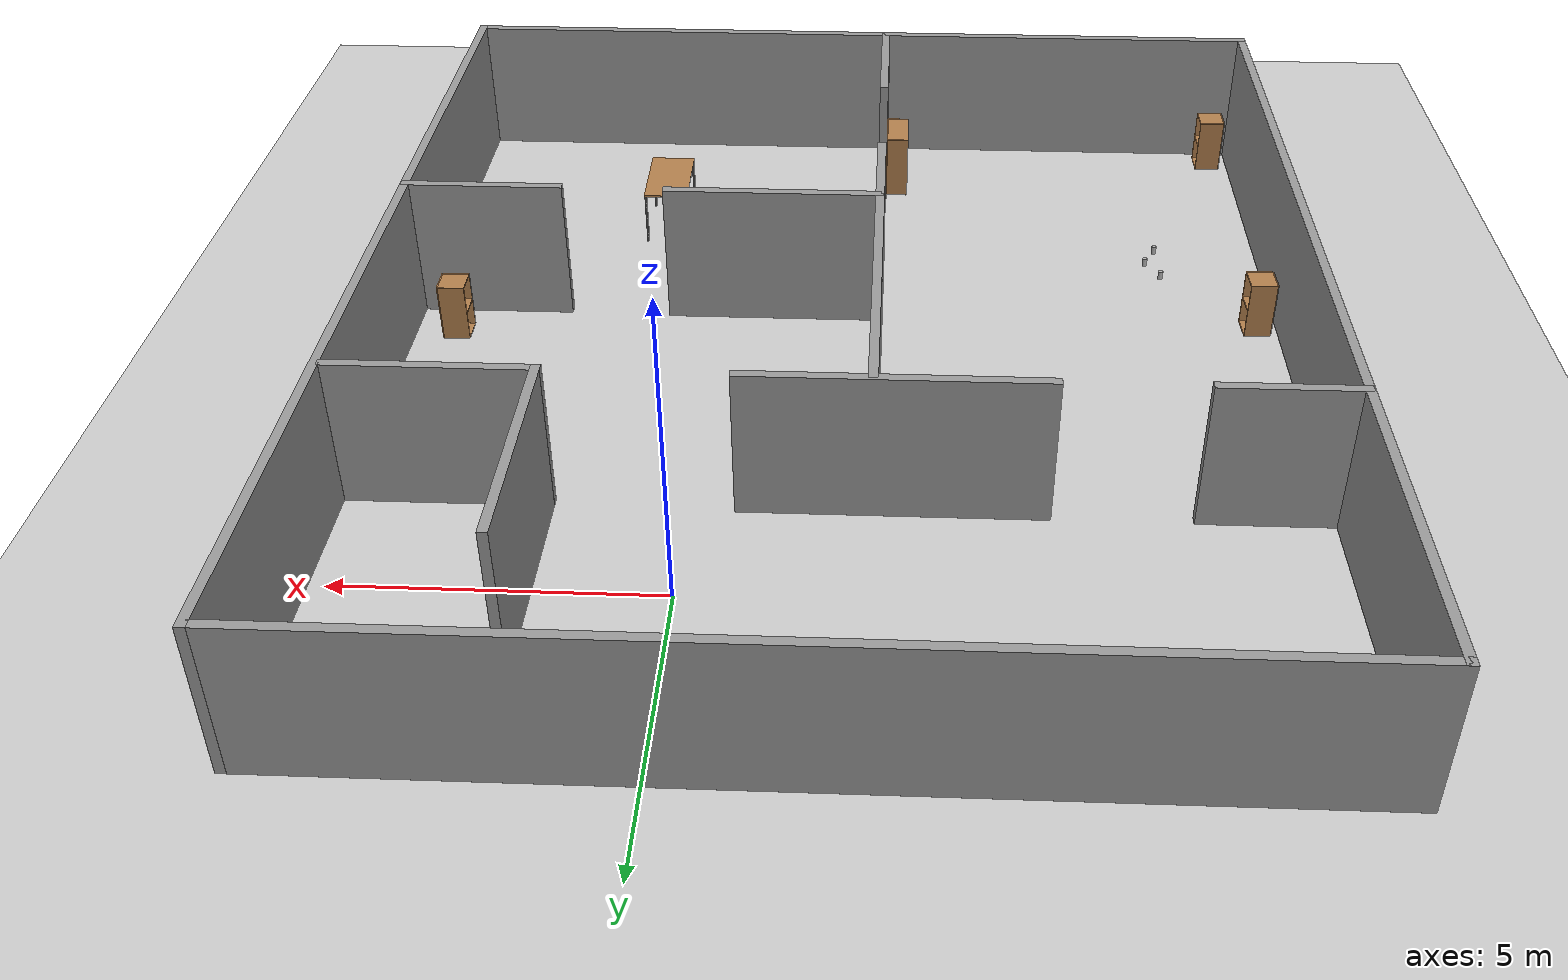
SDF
<sdf version="1.7">
 <world name="default">
  <model name="ground_plane">
   <static>1</static>
   <link name="link">
    <collision name="collision">
     <geometry><plane><normal>0 0 1</normal><size>100 100</size></plane></geometry>
     <surface><friction><ode><mu>100</mu><mu2>50</mu2></ode></friction></surface>
    </collision>
    <visual name="visual">
     <cast_shadows>0</cast_shadows>
     <geometry><plane><normal>0 0 1</normal><size>100 100</size></plane></geometry>
     <material>
      <script><uri>file://media/materials/scripts/gazebo.material</uri><name>Gazebo/Grey</name></script>
     </material>
    </visual>
    <velocity_decay><linear>0</linear><angular>0</angular></velocity_decay>
   </link>
  </model>
  <model name="cabinet_0">
   <static>0</static>
   <link name="cabinet_bottom_plate">
    <inertial>
     <pose>0 0 -1 0 -0 0</pose>
     <inertia><ixx>2.05</ixx><ixy>0</ixy><ixz>0</ixz><iyy>2.05</iyy><iyz>0</iyz><izz>2.05</izz></inertia>
     <mass>25</mass>
    </inertial>
    <collision name="cabinet_bottom_plate_geom">
     <pose>0 0 0.01 0 -0 0</pose>
     <geometry><box><size>0.45 0.45 0.02</size></box></geometry>
    </collision>
    <visual name="cabinet_bottom_plate_geom_visual">
     <pose>0 0 0.01 0 -0 0</pose>
     <geometry><box><size>0.45 0.45 0.02</size></box></geometry>
     <material>
      <script><uri>file://media/materials/scripts/gazebo.material</uri><name>Gazebo/Wood</name></script>
     </material>
    </visual>
    <collision name="cabinet_bottom_plate_geom_cabinet_back_plate">
     <pose>0.235 0 0.51 0 -0 0</pose>
     <geometry><box><size>0.02 0.45 1.02</size></box></geometry>
    </collision>
    <visual name="cabinet_bottom_plate_geom_cabinet_back_plate_visual">
     <pose>0.235 0 0.51 0 -0 0</pose>
     <geometry><box><size>0.02 0.45 1.02</size></box></geometry>
     <material>
      <script><uri>file://media/materials/scripts/gazebo.material</uri><name>Gazebo/Wood</name></script>
     </material>
    </visual>
    <collision name="cabinet_bottom_plate_geom_cabinet_left_plate">
     <pose>0 0.235 0.51 0 -0 0</pose>
     <geometry><box><size>0.45 0.02 1.02</size></box></geometry>
    </collision>
    <visual name="cabinet_bottom_plate_geom_cabinet_left_plate_visual">
     <pose>0 0.235 0.51 0 -0 0</pose>
     <geometry><box><size>0.45 0.02 1.02</size></box></geometry>
     <material>
      <script><uri>file://media/materials/scripts/gazebo.material</uri><name>Gazebo/Wood</name></script>
     </material>
    </visual>
    <collision name="cabinet_bottom_plate_geom_cabinet_middle_plate">
     <pose>0 0 0.51 0 -0 0</pose>
     <geometry><box><size>0.45 0.45 0.02</size></box></geometry>
    </collision>
    <visual name="cabinet_bottom_plate_geom_cabinet_middle_plate_visual">
     <pose>0 0 0.51 0 -0 0</pose>
     <geometry><box><size>0.45 0.45 0.02</size></box></geometry>
     <material>
      <script><uri>file://media/materials/scripts/gazebo.material</uri><name>Gazebo/Wood</name></script>
     </material>
    </visual>
    <collision name="cabinet_bottom_plate_geom_cabinet_right_plate">
     <pose>0 -0.235 0.51 0 -0 0</pose>
     <geometry><box><size>0.45 0.02 1.02</size></box></geometry>
    </collision>
    <visual name="cabinet_bottom_plate_geom_cabinet_right_plate_visual">
     <pose>0 -0.235 0.51 0 -0 0</pose>
     <geometry><box><size>0.45 0.02 1.02</size></box></geometry>
     <material>
      <script><uri>file://media/materials/scripts/gazebo.material</uri><name>Gazebo/Wood</name></script>
     </material>
    </visual>
    <collision name="cabinet_bottom_plate_geom_cabinet_top_plate">
     <pose>0 0 1.01 0 -0 0</pose>
     <geometry><box><size>0.45 0.45 0.02</size></box></geometry>
    </collision>
    <visual name="cabinet_bottom_plate_geom_cabinet_top_plate_visual">
     <pose>0 0 1.01 0 -0 0</pose>
     <geometry><box><size>0.45 0.45 0.02</size></box></geometry>
     <material>
      <script><uri>file://media/materials/scripts/gazebo.material</uri><name>Gazebo/Wood</name></script>
     </material>
    </visual>
    <velocity_decay><linear>0</linear><angular>0</angular></velocity_decay>
   </link>
   <pose>4.50364 -6.65177 -0 1e-06 -0 0.009496</pose>
  </model>
  <model name="cabinet_1">
   <static>0</static>
   <link name="cabinet_bottom_plate">
    <inertial>
     <pose>0 0 -1 0 -0 0</pose>
     <inertia><ixx>2.05</ixx><ixy>0</ixy><ixz>0</ixz><iyy>2.05</iyy><iyz>0</iyz><izz>2.05</izz></inertia>
     <mass>25</mass>
    </inertial>
    <collision name="cabinet_bottom_plate_geom">
     <pose>0 0 0.01 0 -0 0</pose>
     <geometry><box><size>0.45 0.45 0.02</size></box></geometry>
    </collision>
    <visual name="cabinet_bottom_plate_geom_visual">
     <pose>0 0 0.01 0 -0 0</pose>
     <geometry><box><size>0.45 0.45 0.02</size></box></geometry>
     <material>
      <script><uri>file://media/materials/scripts/gazebo.material</uri><name>Gazebo/Wood</name></script>
     </material>
    </visual>
    <collision name="cabinet_bottom_plate_geom_cabinet_back_plate">
     <pose>0.235 0 0.51 0 -0 0</pose>
     <geometry><box><size>0.02 0.45 1.02</size></box></geometry>
    </collision>
    <visual name="cabinet_bottom_plate_geom_cabinet_back_plate_visual">
     <pose>0.235 0 0.51 0 -0 0</pose>
     <geometry><box><size>0.02 0.45 1.02</size></box></geometry>
     <material>
      <script><uri>file://media/materials/scripts/gazebo.material</uri><name>Gazebo/Wood</name></script>
     </material>
    </visual>
    <collision name="cabinet_bottom_plate_geom_cabinet_left_plate">
     <pose>0 0.235 0.51 0 -0 0</pose>
     <geometry><box><size>0.45 0.02 1.02</size></box></geometry>
    </collision>
    <visual name="cabinet_bottom_plate_geom_cabinet_left_plate_visual">
     <pose>0 0.235 0.51 0 -0 0</pose>
     <geometry><box><size>0.45 0.02 1.02</size></box></geometry>
     <material>
      <script><uri>file://media/materials/scripts/gazebo.material</uri><name>Gazebo/Wood</name></script>
     </material>
    </visual>
    <collision name="cabinet_bottom_plate_geom_cabinet_middle_plate">
     <pose>0 0 0.51 0 -0 0</pose>
     <geometry><box><size>0.45 0.45 0.02</size></box></geometry>
    </collision>
    <visual name="cabinet_bottom_plate_geom_cabinet_middle_plate_visual">
     <pose>0 0 0.51 0 -0 0</pose>
     <geometry><box><size>0.45 0.45 0.02</size></box></geometry>
     <material>
      <script><uri>file://media/materials/scripts/gazebo.material</uri><name>Gazebo/Wood</name></script>
     </material>
    </visual>
    <collision name="cabinet_bottom_plate_geom_cabinet_right_plate">
     <pose>0 -0.235 0.51 0 -0 0</pose>
     <geometry><box><size>0.45 0.02 1.02</size></box></geometry>
    </collision>
    <visual name="cabinet_bottom_plate_geom_cabinet_right_plate_visual">
     <pose>0 -0.235 0.51 0 -0 0</pose>
     <geometry><box><size>0.45 0.02 1.02</size></box></geometry>
     <material>
      <script><uri>file://media/materials/scripts/gazebo.material</uri><name>Gazebo/Wood</name></script>
     </material>
    </visual>
    <collision name="cabinet_bottom_plate_geom_cabinet_top_plate">
     <pose>0 0 1.01 0 -0 0</pose>
     <geometry><box><size>0.45 0.45 0.02</size></box></geometry>
    </collision>
    <visual name="cabinet_bottom_plate_geom_cabinet_top_plate_visual">
     <pose>0 0 1.01 0 -0 0</pose>
     <geometry><box><size>0.45 0.45 0.02</size></box></geometry>
     <material>
      <script><uri>file://media/materials/scripts/gazebo.material</uri><name>Gazebo/Wood</name></script>
     </material>
    </visual>
    <velocity_decay><linear>0</linear><angular>0</angular></velocity_decay>
   </link>
   <pose>-9.33458 -7.30018 -0 1e-06 -0 -3.10466</pose>
  </model>
  <model name="bookshelf_2">
   <static>0</static>
   <link name="link">
    <inertial>
     <mass>1</mass>
     <inertia><ixx>1</ixx><ixy>0</ixy><ixz>0</ixz><iyy>1</iyy><iyz>0</iyz><izz>1</izz></inertia>
    </inertial>
    <collision name="back">
     <pose>0 0.005 0.6 0 -0 0</pose>
     <geometry><box><size>0.9 0.01 1.2</size></box></geometry>
    </collision>
    <visual name="visual1">
     <pose>0 0.005 0.6 0 -0 0</pose>
     <geometry><box><size>0.9 0.01 1.2</size></box></geometry>
     <material>
      <script><uri>file://media/materials/scripts/gazebo.material</uri><name>Gazebo/Wood</name></script>
     </material>
    </visual>
    <collision name="left_side">
     <pose>0.45 -0.195 0.6 0 -0 0</pose>
     <geometry><box><size>0.02 0.4 1.2</size></box></geometry>
    </collision>
    <visual name="visual2">
     <pose>0.45 -0.195 0.6 0 -0 0</pose>
     <geometry><box><size>0.02 0.4 1.2</size></box></geometry>
     <material>
      <script><uri>file://media/materials/scripts/gazebo.material</uri><name>Gazebo/Wood</name></script>
     </material>
    </visual>
    <collision name="right_side">
     <pose>-0.45 -0.195 0.6 0 -0 0</pose>
     <geometry><box><size>0.02 0.4 1.2</size></box></geometry>
    </collision>
    <visual name="visual3">
     <pose>-0.45 -0.195 0.6 0 -0 0</pose>
     <geometry><box><size>0.02 0.4 1.2</size></box></geometry>
     <material>
      <script><uri>file://media/materials/scripts/gazebo.material</uri><name>Gazebo/Wood</name></script>
     </material>
    </visual>
    <collision name="bottom">
     <pose>0 -0.195 0.03 0 -0 0</pose>
     <geometry><box><size>0.88 0.4 0.06</size></box></geometry>
    </collision>
    <visual name="visual4">
     <pose>0 -0.195 0.03 0 -0 0</pose>
     <geometry><box><size>0.88 0.4 0.06</size></box></geometry>
     <material>
      <script><uri>file://media/materials/scripts/gazebo.material</uri><name>Gazebo/Wood</name></script>
     </material>
    </visual>
    <collision name="top">
     <pose>0 -0.195 1.19 0 -0 0</pose>
     <geometry><box><size>0.88 0.4 0.02</size></box></geometry>
    </collision>
    <visual name="visual5">
     <pose>0 -0.195 1.19 0 -0 0</pose>
     <geometry><box><size>0.88 0.4 0.02</size></box></geometry>
     <material>
      <script><uri>file://media/materials/scripts/gazebo.material</uri><name>Gazebo/Wood</name></script>
     </material>
    </visual>
    <collision name="low_shelf">
     <pose>0 -0.195 0.43 0 -0 0</pose>
     <geometry><box><size>0.88 0.4 0.02</size></box></geometry>
    </collision>
    <visual name="visual6">
     <pose>0 -0.195 0.43 0 -0 0</pose>
     <geometry><box><size>0.88 0.4 0.02</size></box></geometry>
     <material>
      <script><uri>file://media/materials/scripts/gazebo.material</uri><name>Gazebo/Wood</name></script>
     </material>
    </visual>
    <collision name="high_shelf">
     <pose>0 -0.195 0.8 0 -0 0</pose>
     <geometry><box><size>0.88 0.4 0.02</size></box></geometry>
    </collision>
    <visual name="visual7">
     <pose>0 -0.195 0.8 0 -0 0</pose>
     <geometry><box><size>0.88 0.4 0.02</size></box></geometry>
     <material>
      <script><uri>file://media/materials/scripts/gazebo.material</uri><name>Gazebo/Wood</name></script>
     </material>
    </visual>
    <velocity_decay><linear>0</linear><angular>0</angular></velocity_decay>
   </link>
   <pose>-2.84756 -12.3107 0 -4.7e-05 -0 -1.57079</pose>
  </model>
  <model name="table_0">
   <static>0</static>
   <link name="link">
    <collision name="surface">
     <pose>0 0 1 0 -0 0</pose>
     <geometry><box><size>1.5 0.8 0.03</size></box></geometry>
    </collision>
    <visual name="visual1">
     <pose>0 0 1 0 -0 0</pose>
     <geometry><box><size>1.5 0.8 0.03</size></box></geometry>
     <material>
      <script><uri>file://media/materials/scripts/gazebo.material</uri><name>Gazebo/Wood</name></script>
     </material>
    </visual>
    <collision name="front_left_leg">
     <pose>0.68 0.38 0.5 0 -0 0</pose>
     <geometry><cylinder><radius>0.02</radius><length>1</length></cylinder></geometry>
    </collision>
    <visual name="front_left_leg">
     <pose>0.68 0.38 0.5 0 -0 0</pose>
     <geometry><cylinder><radius>0.02</radius><length>1</length></cylinder></geometry>
     <material>
      <script><uri>file://media/materials/scripts/gazebo.material</uri><name>Gazebo/Grey</name></script>
     </material>
    </visual>
    <collision name="front_right_leg">
     <pose>0.68 -0.38 0.5 0 -0 0</pose>
     <geometry><cylinder><radius>0.02</radius><length>1</length></cylinder></geometry>
    </collision>
    <visual name="front_right_leg">
     <pose>0.68 -0.38 0.5 0 -0 0</pose>
     <geometry><cylinder><radius>0.02</radius><length>1</length></cylinder></geometry>
     <material>
      <script><uri>file://media/materials/scripts/gazebo.material</uri><name>Gazebo/Grey</name></script>
     </material>
    </visual>
    <collision name="back_right_leg">
     <pose>-0.68 -0.38 0.5 0 -0 0</pose>
     <geometry><cylinder><radius>0.02</radius><length>1</length></cylinder></geometry>
    </collision>
    <visual name="back_right_leg">
     <pose>-0.68 -0.38 0.5 0 -0 0</pose>
     <geometry><cylinder><radius>0.02</radius><length>1</length></cylinder></geometry>
     <material>
      <script><uri>file://media/materials/scripts/gazebo.material</uri><name>Gazebo/Grey</name></script>
     </material>
    </visual>
    <collision name="back_left_leg">
     <pose>-0.68 0.38 0.5 0 -0 0</pose>
     <geometry><cylinder><radius>0.02</radius><length>1</length></cylinder></geometry>
    </collision>
    <visual name="back_left_leg">
     <pose>-0.68 0.38 0.5 0 -0 0</pose>
     <geometry><cylinder><radius>0.02</radius><length>1</length></cylinder></geometry>
     <material>
      <script><uri>file://media/materials/scripts/gazebo.material</uri><name>Gazebo/Grey</name></script>
     </material>
    </visual>
    <velocity_decay><linear>0</linear><angular>0</angular></velocity_decay>
    <inertial>
     <inertia><ixx>1</ixx><ixy>0</ixy><ixz>0</ixz><iyy>1</iyy><iyz>0</iyz><izz>1</izz></inertia>
     <mass>1</mass>
    </inertial>
   </link>
   <pose>1.24657 -10.5378 0 0 -0 1.58692</pose>
  </model>
  <model name="bookshelf_3">
   <static>0</static>
   <link name="link">
    <inertial>
     <mass>1</mass>
     <inertia><ixx>1</ixx><ixy>0</ixy><ixz>0</ixz><iyy>1</iyy><iyz>0</iyz><izz>1</izz></inertia>
    </inertial>
    <collision name="back">
     <pose>0 0.005 0.6 0 -0 0</pose>
     <geometry><box><size>0.9 0.01 1.2</size></box></geometry>
    </collision>
    <visual name="visual1">
     <pose>0 0.005 0.6 0 -0 0</pose>
     <geometry><box><size>0.9 0.01 1.2</size></box></geometry>
     <material>
      <script><uri>file://media/materials/scripts/gazebo.material</uri><name>Gazebo/Wood</name></script>
     </material>
    </visual>
    <collision name="left_side">
     <pose>0.45 -0.195 0.6 0 -0 0</pose>
     <geometry><box><size>0.02 0.4 1.2</size></box></geometry>
    </collision>
    <visual name="visual2">
     <pose>0.45 -0.195 0.6 0 -0 0</pose>
     <geometry><box><size>0.02 0.4 1.2</size></box></geometry>
     <material>
      <script><uri>file://media/materials/scripts/gazebo.material</uri><name>Gazebo/Wood</name></script>
     </material>
    </visual>
    <collision name="right_side">
     <pose>-0.45 -0.195 0.6 0 -0 0</pose>
     <geometry><box><size>0.02 0.4 1.2</size></box></geometry>
    </collision>
    <visual name="visual3">
     <pose>-0.45 -0.195 0.6 0 -0 0</pose>
     <geometry><box><size>0.02 0.4 1.2</size></box></geometry>
     <material>
      <script><uri>file://media/materials/scripts/gazebo.material</uri><name>Gazebo/Wood</name></script>
     </material>
    </visual>
    <collision name="bottom">
     <pose>0 -0.195 0.03 0 -0 0</pose>
     <geometry><box><size>0.88 0.4 0.06</size></box></geometry>
    </collision>
    <visual name="visual4">
     <pose>0 -0.195 0.03 0 -0 0</pose>
     <geometry><box><size>0.88 0.4 0.06</size></box></geometry>
     <material>
      <script><uri>file://media/materials/scripts/gazebo.material</uri><name>Gazebo/Wood</name></script>
     </material>
    </visual>
    <collision name="top">
     <pose>0 -0.195 1.19 0 -0 0</pose>
     <geometry><box><size>0.88 0.4 0.02</size></box></geometry>
    </collision>
    <visual name="visual5">
     <pose>0 -0.195 1.19 0 -0 0</pose>
     <geometry><box><size>0.88 0.4 0.02</size></box></geometry>
     <material>
      <script><uri>file://media/materials/scripts/gazebo.material</uri><name>Gazebo/Wood</name></script>
     </material>
    </visual>
    <collision name="low_shelf">
     <pose>0 -0.195 0.43 0 -0 0</pose>
     <geometry><box><size>0.88 0.4 0.02</size></box></geometry>
    </collision>
    <visual name="visual6">
     <pose>0 -0.195 0.43 0 -0 0</pose>
     <geometry><box><size>0.88 0.4 0.02</size></box></geometry>
     <material>
      <script><uri>file://media/materials/scripts/gazebo.material</uri><name>Gazebo/Wood</name></script>
     </material>
    </visual>
    <collision name="high_shelf">
     <pose>0 -0.195 0.8 0 -0 0</pose>
     <geometry><box><size>0.88 0.4 0.02</size></box></geometry>
    </collision>
    <visual name="visual7">
     <pose>0 -0.195 0.8 0 -0 0</pose>
     <geometry><box><size>0.88 0.4 0.02</size></box></geometry>
     <material>
      <script><uri>file://media/materials/scripts/gazebo.material</uri><name>Gazebo/Wood</name></script>
     </material>
    </visual>
    <velocity_decay><linear>0</linear><angular>0</angular></velocity_decay>
   </link>
   <pose>-1.6513 -7.6424 0 -2.9e-05 -0 0</pose>
  </model>
  <model name="cabinet_4">
   <static>0</static>
   <link name="cabinet_bottom_plate">
    <inertial>
     <pose>0 0 -1 0 -0 0</pose>
     <inertia><ixx>2.05</ixx><ixy>0</ixy><ixz>0</ixz><iyy>2.05</iyy><iyz>0</iyz><izz>2.05</izz></inertia>
     <mass>25</mass>
    </inertial>
    <collision name="cabinet_bottom_plate_geom">
     <pose>0 0 0.01 0 -0 0</pose>
     <geometry><box><size>0.45 0.45 0.02</size></box></geometry>
    </collision>
    <visual name="cabinet_bottom_plate_geom_visual">
     <pose>0 0 0.01 0 -0 0</pose>
     <geometry><box><size>0.45 0.45 0.02</size></box></geometry>
     <material>
      <script><uri>file://media/materials/scripts/gazebo.material</uri><name>Gazebo/Wood</name></script>
     </material>
    </visual>
    <collision name="cabinet_bottom_plate_geom_cabinet_back_plate">
     <pose>0.235 0 0.51 0 -0 0</pose>
     <geometry><box><size>0.02 0.45 1.02</size></box></geometry>
    </collision>
    <visual name="cabinet_bottom_plate_geom_cabinet_back_plate_visual">
     <pose>0.235 0 0.51 0 -0 0</pose>
     <geometry><box><size>0.02 0.45 1.02</size></box></geometry>
     <material>
      <script><uri>file://media/materials/scripts/gazebo.material</uri><name>Gazebo/Wood</name></script>
     </material>
    </visual>
    <collision name="cabinet_bottom_plate_geom_cabinet_left_plate">
     <pose>0 0.235 0.51 0 -0 0</pose>
     <geometry><box><size>0.45 0.02 1.02</size></box></geometry>
    </collision>
    <visual name="cabinet_bottom_plate_geom_cabinet_left_plate_visual">
     <pose>0 0.235 0.51 0 -0 0</pose>
     <geometry><box><size>0.45 0.02 1.02</size></box></geometry>
     <material>
      <script><uri>file://media/materials/scripts/gazebo.material</uri><name>Gazebo/Wood</name></script>
     </material>
    </visual>
    <collision name="cabinet_bottom_plate_geom_cabinet_middle_plate">
     <pose>0 0 0.51 0 -0 0</pose>
     <geometry><box><size>0.45 0.45 0.02</size></box></geometry>
    </collision>
    <visual name="cabinet_bottom_plate_geom_cabinet_middle_plate_visual">
     <pose>0 0 0.51 0 -0 0</pose>
     <geometry><box><size>0.45 0.45 0.02</size></box></geometry>
     <material>
      <script><uri>file://media/materials/scripts/gazebo.material</uri><name>Gazebo/Wood</name></script>
     </material>
    </visual>
    <collision name="cabinet_bottom_plate_geom_cabinet_right_plate">
     <pose>0 -0.235 0.51 0 -0 0</pose>
     <geometry><box><size>0.45 0.02 1.02</size></box></geometry>
    </collision>
    <visual name="cabinet_bottom_plate_geom_cabinet_right_plate_visual">
     <pose>0 -0.235 0.51 0 -0 0</pose>
     <geometry><box><size>0.45 0.02 1.02</size></box></geometry>
     <material>
      <script><uri>file://media/materials/scripts/gazebo.material</uri><name>Gazebo/Wood</name></script>
     </material>
    </visual>
    <collision name="cabinet_bottom_plate_geom_cabinet_top_plate">
     <pose>0 0 1.01 0 -0 0</pose>
     <geometry><box><size>0.45 0.45 0.02</size></box></geometry>
    </collision>
    <visual name="cabinet_bottom_plate_geom_cabinet_top_plate_visual">
     <pose>0 0 1.01 0 -0 0</pose>
     <geometry><box><size>0.45 0.45 0.02</size></box></geometry>
     <material>
      <script><uri>file://media/materials/scripts/gazebo.material</uri><name>Gazebo/Wood</name></script>
     </material>
    </visual>
    <velocity_decay><linear>0</linear><angular>0</angular></velocity_decay>
   </link>
   <pose>-9.29866 -13.4113 -0 -1e-06 -0 -3.1355</pose>
  </model>
  <model name="cocacola">
   <static>0</static>
   <link name="link">
    <inertial>
     <mass>0.25</mass>
     <inertia><ixx>0</ixx><ixy>0</ixy><ixz>0</ixz><iyy>0</iyy><iyz>0</iyz><izz>0</izz></inertia>
    </inertial>
    <collision name="collision">
     <pose>0 0 0.075 -3.14159 -0 0</pose>
     <geometry><cylinder><radius>0.04</radius><length>0.15</length></cylinder></geometry>
    </collision>
    <visual name="visual">
     <pose>0 0 0.075 -3.14159 -0 0</pose>
     <geometry><cylinder><radius>0.04</radius><length>0.15</length></cylinder></geometry>
     <material>
      <script>
       <uri>model://cocacola/material/scripts</uri>
       <uri>model://cocacola/material/textures</uri>
       <name>Custom/cocacola</name>
      </script>
     </material>
    </visual>
    <velocity_decay><linear>0</linear><angular>0</angular></velocity_decay>
   </link>
   <pose>-7.77263 -9.29055 0.300008 7e-05 -0.000195 -4e-06</pose>
  </model>
  <model name="cocacola_0">
   <static>0</static>
   <link name="link">
    <inertial>
     <mass>0.25</mass>
     <inertia><ixx>0</ixx><ixy>0</ixy><ixz>0</ixz><iyy>0</iyy><iyz>0</iyz><izz>0</izz></inertia>
    </inertial>
    <collision name="collision">
     <pose>0 0 0.075 -3.14159 -0 0</pose>
     <geometry><cylinder><radius>0.04</radius><length>0.15</length></cylinder></geometry>
    </collision>
    <visual name="visual">
     <pose>0 0 0.075 -3.14159 -0 0</pose>
     <geometry><cylinder><radius>0.04</radius><length>0.15</length></cylinder></geometry>
     <material>
      <script>
       <uri>model://cocacola/material/scripts</uri>
       <uri>model://cocacola/material/textures</uri>
       <name>Custom/cocacola</name>
      </script>
     </material>
    </visual>
    <velocity_decay><linear>0</linear><angular>0</angular></velocity_decay>
   </link>
   <pose>-7.79476 -8.41563 0.299999 0.000191 -9.5e-05 -2e-06</pose>
  </model>
  <model name="cocacola_1">
   <static>0</static>
   <link name="link">
    <inertial>
     <mass>0.25</mass>
     <inertia><ixx>0</ixx><ixy>0</ixy><ixz>0</ixz><iyy>0</iyy><iyz>0</iyz><izz>0</izz></inertia>
    </inertial>
    <collision name="collision">
     <pose>0 0 0.075 -3.14159 -0 0</pose>
     <geometry><cylinder><radius>0.04</radius><length>0.15</length></cylinder></geometry>
    </collision>
    <visual name="visual">
     <pose>0 0 0.075 -3.14159 -0 0</pose>
     <geometry><cylinder><radius>0.04</radius><length>0.15</length></cylinder></geometry>
     <material>
      <script>
       <uri>model://cocacola/material/scripts</uri>
       <uri>model://cocacola/material/textures</uri>
       <name>Custom/cocacola</name>
      </script>
     </material>
    </visual>
    <velocity_decay><linear>0</linear><angular>0</angular></velocity_decay>
   </link>
   <pose>-7.55915 -8.84989 0.30001 0.000167 -0.000173 1.9e-05</pose>
  </model>
  <model name="cabinet_1">
   <static>0</static>
   <link name="cabinet_bottom_plate">
    <inertial>
     <pose>0 0 -1 0 -0 0</pose>
     <inertia><ixx>2.05</ixx><ixy>0</ixy><ixz>0</ixz><iyy>2.05</iyy><iyz>0</iyz><izz>2.05</izz></inertia>
     <mass>25</mass>
    </inertial>
    <collision name="cabinet_bottom_plate_geom">
     <pose>0 0 0.01 0 -0 0</pose>
     <geometry><box><size>0.45 0.45 0.02</size></box></geometry>
    </collision>
    <visual name="cabinet_bottom_plate_geom_visual">
     <pose>0 0 0.01 0 -0 0</pose>
     <geometry><box><size>0.45 0.45 0.02</size></box></geometry>
     <material>
      <script><uri>file://media/materials/scripts/gazebo.material</uri><name>Gazebo/Wood</name></script>
     </material>
    </visual>
    <collision name="cabinet_bottom_plate_geom_cabinet_back_plate">
     <pose>0.235 0 0.51 0 -0 0</pose>
     <geometry><box><size>0.02 0.45 1.02</size></box></geometry>
    </collision>
    <visual name="cabinet_bottom_plate_geom_cabinet_back_plate_visual">
     <pose>0.235 0 0.51 0 -0 0</pose>
     <geometry><box><size>0.02 0.45 1.02</size></box></geometry>
     <material>
      <script><uri>file://media/materials/scripts/gazebo.material</uri><name>Gazebo/Wood</name></script>
     </material>
    </visual>
    <collision name="cabinet_bottom_plate_geom_cabinet_left_plate">
     <pose>0 0.235 0.51 0 -0 0</pose>
     <geometry><box><size>0.45 0.02 1.02</size></box></geometry>
    </collision>
    <visual name="cabinet_bottom_plate_geom_cabinet_left_plate_visual">
     <pose>0 0.235 0.51 0 -0 0</pose>
     <geometry><box><size>0.45 0.02 1.02</size></box></geometry>
     <material>
      <script><uri>file://media/materials/scripts/gazebo.material</uri><name>Gazebo/Wood</name></script>
     </material>
    </visual>
    <collision name="cabinet_bottom_plate_geom_cabinet_middle_plate">
     <pose>0 0 0.51 0 -0 0</pose>
     <geometry><box><size>0.45 0.45 0.02</size></box></geometry>
    </collision>
    <visual name="cabinet_bottom_plate_geom_cabinet_middle_plate_visual">
     <pose>0 0 0.51 0 -0 0</pose>
     <geometry><box><size>0.45 0.45 0.02</size></box></geometry>
     <material>
      <script><uri>file://media/materials/scripts/gazebo.material</uri><name>Gazebo/Wood</name></script>
     </material>
    </visual>
    <collision name="cabinet_bottom_plate_geom_cabinet_right_plate">
     <pose>0 -0.235 0.51 0 -0 0</pose>
     <geometry><box><size>0.45 0.02 1.02</size></box></geometry>
    </collision>
    <visual name="cabinet_bottom_plate_geom_cabinet_right_plate_visual">
     <pose>0 -0.235 0.51 0 -0 0</pose>
     <geometry><box><size>0.45 0.02 1.02</size></box></geometry>
     <material>
      <script><uri>file://media/materials/scripts/gazebo.material</uri><name>Gazebo/Wood</name></script>
     </material>
    </visual>
    <collision name="cabinet_bottom_plate_geom_cabinet_top_plate">
     <pose>0 0 1.01 0 -0 0</pose>
     <geometry><box><size>0.45 0.45 0.02</size></box></geometry>
    </collision>
    <visual name="cabinet_bottom_plate_geom_cabinet_top_plate_visual">
     <pose>0 0 1.01 0 -0 0</pose>
     <geometry><box><size>0.45 0.45 0.02</size></box></geometry>
     <material>
      <script><uri>file://media/materials/scripts/gazebo.material</uri><name>Gazebo/Wood</name></script>
     </material>
    </visual>
    <velocity_decay><linear>0</linear><angular>0</angular></velocity_decay>
   </link>
   <pose>-9.33458 -7.30018 -0 1e-06 -0 -3.10466</pose>
  </model>
  <model name="home_walls">
   <pose>-2.23267 -5.22797 0 0 -0 0</pose>
   <link name="Wall_10">
    <collision name="Wall_10_Collision">
     <geometry><box><size>15.25 0.15 2.5</size></box></geometry>
     <pose>0 0 1.25 0 -0 0</pose>
    </collision>
    <visual name="Wall_10_Visual">
     <pose>0 0 1.25 0 -0 0</pose>
     <geometry><box><size>15.25 0.15 2.5</size></box></geometry>
     <material>
      <script><uri>file://media/materials/scripts/gazebo.material</uri><name>Gazebo/Grey</name></script>
      <ambient>1 1 1 1</ambient>
     </material>
     <meta><layer>0</layer></meta>
    </visual>
    <pose>0 8.675 0 0 -0 3.14159</pose>
   </link>
   <link name="Wall_14">
    <collision name="Wall_14_Collision">
     <geometry><box><size>3.25 0.15 2.5</size></box></geometry>
     <pose>0 0 1.25 0 -0 0</pose>
    </collision>
    <visual name="Wall_14_Visual">
     <pose>0 0 1.25 0 -0 0</pose>
     <geometry><box><size>3.25 0.15 2.5</size></box></geometry>
     <material>
      <script><uri>file://media/materials/scripts/gazebo.material</uri><name>Gazebo/Grey</name></script>
      <ambient>1 1 1 1</ambient>
     </material>
     <meta><layer>0</layer></meta>
    </visual>
    <pose>5.88616 3.20782 0 0 -0 0</pose>
   </link>
   <link name="Wall_16">
    <collision name="Wall_16_Collision">
     <geometry><box><size>3.75 0.15 2.5</size></box></geometry>
     <pose>0 0 1.25 0 -0 0</pose>
    </collision>
    <visual name="Wall_16_Visual">
     <pose>0 0 1.25 0 -0 0</pose>
     <geometry><box><size>3.75 0.15 2.5</size></box></geometry>
     <material>
      <script><uri>file://media/materials/scripts/gazebo.material</uri><name>Gazebo/Grey</name></script>
      <ambient>1 1 1 1</ambient>
     </material>
     <meta><layer>0</layer></meta>
    </visual>
    <pose>4.33616 5.00782 0 0 -0 1.5708</pose>
   </link>
   <link name="Wall_18">
    <collision name="Wall_18_Collision">
     <geometry><box><size>4.75 0.15 2.5</size></box></geometry>
     <pose>0 0 1.25 0 -0 0</pose>
    </collision>
    <visual name="Wall_18_Visual">
     <pose>0 0 1.25 0 -0 0</pose>
     <geometry><box><size>4.75 0.15 2.5</size></box></geometry>
     <material>
      <script><uri>file://media/materials/scripts/gazebo.material</uri><name>Gazebo/Grey</name></script>
      <ambient>1 1 1 1</ambient>
     </material>
     <meta><layer>0</layer></meta>
    </visual>
    <pose>-0.848613 3.23707 0 0 -0 3.14159</pose>
   </link>
   <link name="Wall_20">
    <collision name="Wall_20_Collision">
     <geometry><box><size>2.25 0.15 2.5</size></box></geometry>
     <pose>0 0 1.25 0 -0 0</pose>
    </collision>
    <visual name="Wall_20_Visual">
     <pose>0 0 1.25 0 -0 0</pose>
     <geometry><box><size>2.25 0.15 2.5</size></box></geometry>
     <material>
      <script><uri>file://media/materials/scripts/gazebo.material</uri><name>Gazebo/Grey</name></script>
      <ambient>1 1 1 1</ambient>
     </material>
     <meta><layer>0</layer></meta>
    </visual>
    <pose>-6.48476 3.23707 0 0 -0 0</pose>
   </link>
   <link name="Wall_25">
    <collision name="Wall_25_Collision">
     <geometry><box><size>2.5 0.15 2.5</size></box></geometry>
     <pose>0 0 1.25 0 -0 0</pose>
    </collision>
    <visual name="Wall_25_Visual">
     <pose>0 0 1.25 0 -0 0</pose>
     <geometry><box><size>2.5 0.15 2.5</size></box></geometry>
     <material>
      <script><uri>file://media/materials/scripts/gazebo.material</uri><name>Gazebo/Grey</name></script>
      <ambient>1 1 1 1</ambient>
     </material>
     <meta><layer>0</layer></meta>
    </visual>
    <pose>-0.52981 -7.47512 0 0 -0 1.5708</pose>
   </link>
   <link name="Wall_27">
    <collision name="Wall_27_Collision">
     <geometry><box><size>7.25 0.15 2.5</size></box></geometry>
     <pose>0 0 1.25 0 -0 0</pose>
    </collision>
    <visual name="Wall_27_Visual">
     <pose>0 0 1.25 0 -0 0</pose>
     <geometry><box><size>7.25 0.15 2.5</size></box></geometry>
     <material>
      <script><uri>file://media/materials/scripts/gazebo.material</uri><name>Gazebo/Grey</name></script>
      <ambient>1 1 1 1</ambient>
     </material>
     <meta><layer>0</layer></meta>
    </visual>
    <pose>-0.52981 -0.359395 0 0 -0 1.5708</pose>
   </link>
   <link name="Wall_29">
    <collision name="Wall_29_Collision">
     <geometry><box><size>3.75 0.15 2.5</size></box></geometry>
     <pose>0 0 1.25 0 -0 0</pose>
    </collision>
    <visual name="Wall_29_Visual">
     <pose>0 0 1.25 0 -0 0</pose>
     <geometry><box><size>3.75 0.15 2.5</size></box></geometry>
     <material>
      <script><uri>file://media/materials/scripts/gazebo.material</uri><name>Gazebo/Grey</name></script>
      <ambient>1 1 1 1</ambient>
     </material>
     <meta><layer>0</layer></meta>
    </visual>
    <pose>1.27019 -2.14047 0 0 -0 0</pose>
   </link>
   <link name="Wall_35">
    <collision name="Wall_35_Collision">
     <geometry><box><size>2.75 0.15 2.5</size></box></geometry>
     <pose>0 0 1.25 0 -0 0</pose>
    </collision>
    <visual name="Wall_35_Visual">
     <pose>0 0 1.25 0 -0 0</pose>
     <geometry><box><size>2.75 0.15 2.5</size></box></geometry>
     <material>
      <script><uri>file://media/materials/scripts/gazebo.material</uri><name>Gazebo/Grey</name></script>
      <ambient>1 1 1 1</ambient>
     </material>
     <meta><layer>0</layer></meta>
    </visual>
    <pose>6.24205 -2.17585 0 0 -0 0</pose>
   </link>
   <link name="Wall_7">
    <collision name="Wall_7_Collision">
     <geometry><box><size>17.5 0.15 2.5</size></box></geometry>
     <pose>0 0 1.25 0 -0 0</pose>
    </collision>
    <visual name="Wall_7_Visual">
     <pose>0 0 1.25 0 -0 0</pose>
     <geometry><box><size>17.5 0.15 2.5</size></box></geometry>
     <material>
      <script><uri>file://media/materials/scripts/gazebo.material</uri><name>Gazebo/Grey</name></script>
      <ambient>1 1 1 1</ambient>
     </material>
     <meta><layer>0</layer></meta>
    </visual>
    <pose>-7.55 0 0 0 0 -1.5708</pose>
   </link>
   <link name="Wall_8">
    <collision name="Wall_8_Collision">
     <geometry><box><size>15.25 0.15 2.5</size></box></geometry>
     <pose>0 0 1.25 0 -0 0</pose>
    </collision>
    <visual name="Wall_8_Visual">
     <pose>0 0 1.25 0 -0 0</pose>
     <geometry><box><size>15.25 0.15 2.5</size></box></geometry>
     <material>
      <script><uri>file://media/materials/scripts/gazebo.material</uri><name>Gazebo/Grey</name></script>
      <ambient>1 1 1 1</ambient>
     </material>
     <meta><layer>0</layer></meta>
    </visual>
    <pose>0 -8.675 0 0 -0 0</pose>
   </link>
   <link name="Wall_9">
    <collision name="Wall_9_Collision">
     <geometry><box><size>17.5 0.15 2.5</size></box></geometry>
     <pose>0 0 1.25 0 -0 0</pose>
    </collision>
    <visual name="Wall_9_Visual">
     <pose>0 0 1.25 0 -0 0</pose>
     <geometry><box><size>17.5 0.15 2.5</size></box></geometry>
     <material>
      <script><uri>file://media/materials/scripts/gazebo.material</uri><name>Gazebo/Grey</name></script>
      <ambient>1 1 1 1</ambient>
     </material>
     <meta><layer>0</layer></meta>
    </visual>
    <pose>7.55 0 0 0 -0 1.5708</pose>
   </link>
   <static>1</static>
  </model>
 </world>
</sdf>
